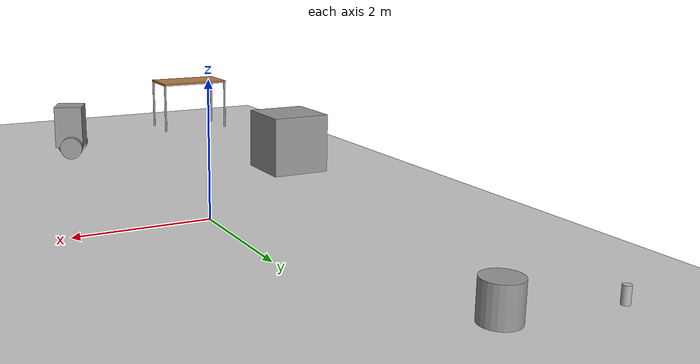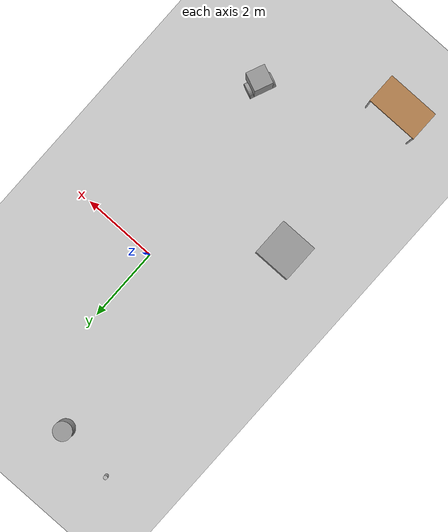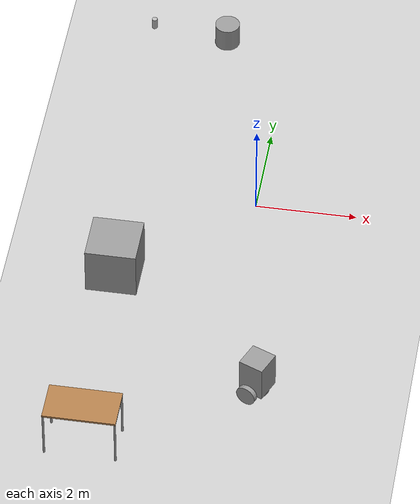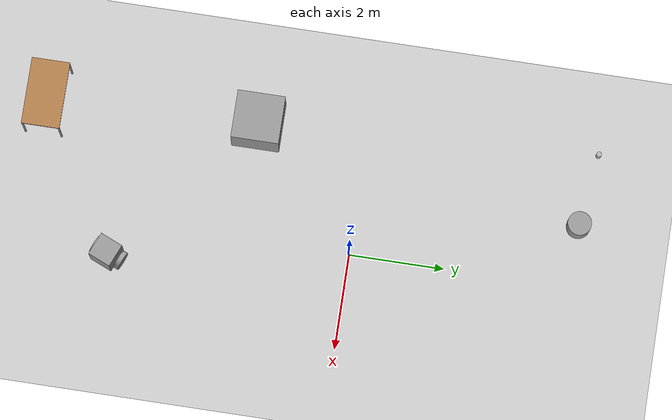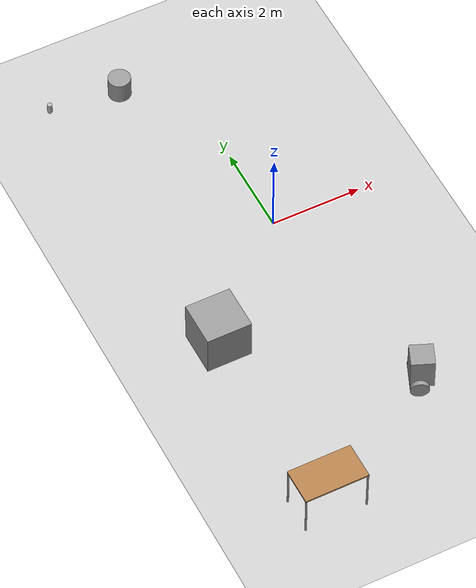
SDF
<sdf version="1.6">
 <world name="default">
  <model name="ground_plane">
   <static>1</static>
   <link name="link">
    <collision name="collision">
     <geometry><plane><normal>0 0 1</normal><size>100 100</size></plane></geometry>
     <surface><friction><ode><mu>100</mu><mu2>50</mu2></ode></friction></surface>
    </collision>
    <visual name="visual">
     <cast_shadows>0</cast_shadows>
     <geometry><plane><normal>0 0 1</normal><size>100 100</size></plane></geometry>
     <material>
      <script><uri>file://media/materials/scripts/gazebo.material</uri><name>Gazebo/Grey</name></script>
     </material>
    </visual>
   </link>
  </model>
  <model name="myrobot">
   <link name="link_0">
    <pose>0.0125 0 0.28125 0 -0 0</pose>
    <inertial>
     <mass>1</mass>
     <inertia>
      <ixx>0.166667</ixx>
      <ixy>0</ixy>
      <ixz>0</ixz>
      <iyy>0.166667</iyy>
      <iyz>0</iyz>
      <izz>0.166667</izz>
     </inertia>
    </inertial>
    <visual name="visual">
     <geometry><box><size>0.5 0.5 0.75</size></box></geometry>
     <material>
      <lighting>1</lighting>
      <script><uri>file://media/materials/scripts/gazebo.material</uri><name>Gazebo/Grey</name></script>
      <ambient>0.3 0.3 0.3 1</ambient>
      <diffuse>0.7 0.7 0.7 1</diffuse>
      <specular>0.01 0.01 0.01 1</specular>
      <emissive>0 0 0 1</emissive>
      <shader type="vertex"><normal_map>__default__</normal_map></shader>
     </material>
    </visual>
    <collision name="collision">
     <geometry><box><size>0.5 0.5 0.75</size></box></geometry>
     <surface>
      <friction>
       <ode><mu>1</mu><mu2>1</mu2><fdir1>0 0 0</fdir1><slip1>0</slip1><slip2>0</slip2></ode>
       <torsional>
        <coefficient>1</coefficient>
        <patch_radius>0</patch_radius>
        <surface_radius>0</surface_radius>
        <use_patch_radius>1</use_patch_radius>
        <ode><slip>0</slip></ode>
       </torsional>
      </friction>
      <bounce><restitution_coefficient>0</restitution_coefficient><threshold>1e+06</threshold></bounce>
      <contact>
       <collide_without_contact>0</collide_without_contact>
       <collide_without_contact_bitmask>1</collide_without_contact_bitmask>
       <collide_bitmask>1</collide_bitmask>
       <ode>
        <soft_cfm>0</soft_cfm>
        <soft_erp>0.2</soft_erp>
        <kp>1e+13</kp>
        <kd>1</kd>
        <max_vel>0.01</max_vel>
        <min_depth>0</min_depth>
       </ode>
       <bullet>
        <split_impulse>1</split_impulse>
        <split_impulse_penetration_threshold>-0.01</split_impulse_penetration_threshold>
        <soft_cfm>0</soft_cfm>
        <soft_erp>0.2</soft_erp>
        <kp>1e+13</kp>
        <kd>1</kd>
       </bullet>
      </contact>
     </surface>
    </collision>
   </link>
   <link name="link_1">
    <pose>-0.0375 0.300019 -0.09375 1.5707 -0 0</pose>
    <inertial>
     <mass>1</mass>
     <inertia><ixx>0.145833</ixx><ixy>0</ixy><ixz>0</ixz><iyy>0.145833</iyy><iyz>0</iyz><izz>0.125</izz></inertia>
    </inertial>
    <visual name="visual">
     <geometry><cylinder><radius>0.2</radius><length>0.1</length></cylinder></geometry>
     <material>
      <lighting>1</lighting>
      <script><uri>file://media/materials/scripts/gazebo.material</uri><name>Gazebo/Grey</name></script>
      <ambient>0.3 0.3 0.3 1</ambient>
      <diffuse>0.7 0.7 0.7 1</diffuse>
      <specular>0.01 0.01 0.01 1</specular>
      <emissive>0 0 0 1</emissive>
      <shader type="vertex"><normal_map>__default__</normal_map></shader>
     </material>
    </visual>
    <collision name="collision">
     <geometry><cylinder><radius>0.2</radius><length>0.1</length></cylinder></geometry>
     <surface>
      <friction>
       <ode><mu>1</mu><mu2>1</mu2><fdir1>0 0 0</fdir1><slip1>0</slip1><slip2>0</slip2></ode>
       <torsional>
        <coefficient>1</coefficient>
        <patch_radius>0</patch_radius>
        <surface_radius>0</surface_radius>
        <use_patch_radius>1</use_patch_radius>
        <ode><slip>0</slip></ode>
       </torsional>
      </friction>
      <bounce><restitution_coefficient>0</restitution_coefficient><threshold>1e+06</threshold></bounce>
      <contact>
       <collide_without_contact>0</collide_without_contact>
       <collide_without_contact_bitmask>1</collide_without_contact_bitmask>
       <collide_bitmask>1</collide_bitmask>
       <ode>
        <soft_cfm>0</soft_cfm>
        <soft_erp>0.2</soft_erp>
        <kp>1e+13</kp>
        <kd>1</kd>
        <max_vel>0.01</max_vel>
        <min_depth>0</min_depth>
       </ode>
       <bullet>
        <split_impulse>1</split_impulse>
        <split_impulse_penetration_threshold>-0.01</split_impulse_penetration_threshold>
        <soft_cfm>0</soft_cfm>
        <soft_erp>0.2</soft_erp>
        <kp>1e+13</kp>
        <kd>1</kd>
       </bullet>
      </contact>
     </surface>
    </collision>
   </link>
   <link name="link_1_clone">
    <pose>-0.0375 -0.300019 -0.09375 1.5707 -0 0</pose>
    <inertial>
     <mass>1</mass>
     <inertia><ixx>0.145833</ixx><ixy>0</ixy><ixz>0</ixz><iyy>0.145833</iyy><iyz>0</iyz><izz>0.125</izz></inertia>
    </inertial>
    <visual name="visual">
     <geometry><cylinder><radius>0.2</radius><length>0.1</length></cylinder></geometry>
     <material>
      <lighting>1</lighting>
      <script><uri>file://media/materials/scripts/gazebo.material</uri><name>Gazebo/Grey</name></script>
      <ambient>0.3 0.3 0.3 1</ambient>
      <diffuse>0.7 0.7 0.7 1</diffuse>
      <specular>0.01 0.01 0.01 1</specular>
      <emissive>0 0 0 1</emissive>
      <shader type="vertex"><normal_map>__default__</normal_map></shader>
     </material>
    </visual>
    <collision name="collision">
     <geometry><cylinder><radius>0.2</radius><length>0.1</length></cylinder></geometry>
     <surface>
      <friction>
       <ode><mu>1</mu><mu2>1</mu2><fdir1>0 0 0</fdir1><slip1>0</slip1><slip2>0</slip2></ode>
       <torsional>
        <coefficient>1</coefficient>
        <patch_radius>0</patch_radius>
        <surface_radius>0</surface_radius>
        <use_patch_radius>1</use_patch_radius>
        <ode><slip>0</slip></ode>
       </torsional>
      </friction>
      <bounce><restitution_coefficient>0</restitution_coefficient><threshold>1e+06</threshold></bounce>
      <contact>
       <collide_without_contact>0</collide_without_contact>
       <collide_without_contact_bitmask>1</collide_without_contact_bitmask>
       <collide_bitmask>1</collide_bitmask>
       <ode>
        <soft_cfm>0</soft_cfm>
        <soft_erp>0.2</soft_erp>
        <kp>1e+13</kp>
        <kd>1</kd>
        <max_vel>0.01</max_vel>
        <min_depth>0</min_depth>
       </ode>
       <bullet>
        <split_impulse>1</split_impulse>
        <split_impulse_penetration_threshold>-0.01</split_impulse_penetration_threshold>
        <soft_cfm>0</soft_cfm>
        <soft_erp>0.2</soft_erp>
        <kp>1e+13</kp>
        <kd>1</kd>
       </bullet>
      </contact>
     </surface>
    </collision>
   </link>
   <link name="link_2">
    <pose>0.0625 0 -0.09375 0 -0 0</pose>
    <inertial>
     <mass>1</mass>
     <inertia><ixx>0.1</ixx><ixy>0</ixy><ixz>0</ixz><iyy>0.1</iyy><iyz>0</iyz><izz>0.1</izz></inertia>
    </inertial>
    <visual name="visual">
     <geometry><sphere><radius>0.2</radius></sphere></geometry>
     <material>
      <lighting>1</lighting>
      <script><uri>file://media/materials/scripts/gazebo.material</uri><name>Gazebo/Grey</name></script>
      <ambient>0.3 0.3 0.3 1</ambient>
      <diffuse>0.7 0.7 0.7 1</diffuse>
      <specular>0.01 0.01 0.01 1</specular>
      <emissive>0 0 0 1</emissive>
      <shader type="vertex"><normal_map>__default__</normal_map></shader>
     </material>
    </visual>
    <collision name="collision">
     <geometry><sphere><radius>0.2</radius></sphere></geometry>
     <surface>
      <friction>
       <ode><mu>1</mu><mu2>1</mu2><fdir1>0 0 0</fdir1><slip1>0</slip1><slip2>0</slip2></ode>
       <torsional>
        <coefficient>1</coefficient>
        <patch_radius>0</patch_radius>
        <surface_radius>0</surface_radius>
        <use_patch_radius>1</use_patch_radius>
        <ode><slip>0</slip></ode>
       </torsional>
      </friction>
      <bounce><restitution_coefficient>0</restitution_coefficient><threshold>1e+06</threshold></bounce>
      <contact>
       <collide_without_contact>0</collide_without_contact>
       <collide_without_contact_bitmask>1</collide_without_contact_bitmask>
       <collide_bitmask>1</collide_bitmask>
       <ode>
        <soft_cfm>0</soft_cfm>
        <soft_erp>0.2</soft_erp>
        <kp>1e+13</kp>
        <kd>1</kd>
        <max_vel>0.01</max_vel>
        <min_depth>0</min_depth>
       </ode>
       <bullet>
        <split_impulse>1</split_impulse>
        <split_impulse_penetration_threshold>-0.01</split_impulse_penetration_threshold>
        <soft_cfm>0</soft_cfm>
        <soft_erp>0.2</soft_erp>
        <kp>1e+13</kp>
        <kd>1</kd>
       </bullet>
      </contact>
     </surface>
    </collision>
   </link>
   <joint name="link_0_JOINT_1" type="revolute">
    <parent>link_0</parent>
    <child>link_1</child>
    <axis>
     <xyz>0 0 1</xyz>
     <use_parent_model_frame>0</use_parent_model_frame>
     <limit>
      <lower>-1.79769e+308</lower>
      <upper>1.79769e+308</upper>
      <effort>-1</effort>
      <velocity>-1</velocity>
     </limit>
     <dynamics>
      <spring_reference>0</spring_reference>
      <spring_stiffness>0</spring_stiffness>
      <damping>0</damping>
     </dynamics>
    </axis>
    <physics>
     <ode><limit><cfm>0</cfm><erp>0.2</erp></limit><suspension><cfm>0</cfm><erp>0.2</erp></suspension></ode>
    </physics>
   </joint>
   <joint name="link_0_JOINT_2" type="revolute">
    <parent>link_0</parent>
    <child>link_1_clone</child>
    <axis>
     <xyz>1 0 0</xyz>
     <use_parent_model_frame>0</use_parent_model_frame>
     <limit>
      <lower>-1.79769e+308</lower>
      <upper>1.79769e+308</upper>
      <effort>-1</effort>
      <velocity>-1</velocity>
     </limit>
     <dynamics>
      <spring_reference>0</spring_reference>
      <spring_stiffness>0</spring_stiffness>
      <damping>0</damping>
     </dynamics>
    </axis>
    <physics>
     <ode><limit><cfm>0</cfm><erp>0.2</erp></limit><suspension><cfm>0</cfm><erp>0.2</erp></suspension></ode>
    </physics>
   </joint>
   <joint name="link_0_JOINT_3" type="ball">
    <parent>link_0</parent>
    <child>link_2</child>
    <physics>
     <ode><limit><cfm>0</cfm><erp>0.2</erp></limit><suspension><cfm>0</cfm><erp>0.2</erp></suspension></ode>
    </physics>
   </joint>
   <static>0</static>
   <pose>0.769948 -4.95297 0.293751 7e-06 3.1e-05 -0.401224</pose>
  </model>
  <model name="unit_cylinder_0_0">
   <link name="link">
    <inertial>
     <mass>1</mass>
     <inertia><ixx>0.145833</ixx><ixy>0</ixy><ixz>0</ixz><iyy>0.145833</iyy><iyz>0</iyz><izz>0.125</izz></inertia>
    </inertial>
    <visual name="visual">
     <geometry><cylinder><radius>0.25</radius><length>0.5</length></cylinder></geometry>
     <material>
      <script><name>Gazebo/Grey</name><uri>file://media/materials/scripts/gazebo.material</uri></script>
      <ambient>0.3 0.3 0.3 1</ambient>
      <diffuse>0.7 0.7 0.7 1</diffuse>
      <specular>0.01 0.01 0.01 1</specular>
      <emissive>0 0 0 1</emissive>
      <shader type="vertex"><normal_map>__default__</normal_map></shader>
     </material>
    </visual>
    <collision name="collision">
     <geometry><cylinder><radius>0.25</radius><length>0.5</length></cylinder></geometry>
     <surface>
      <friction>
       <ode><mu>1</mu><mu2>1</mu2><fdir1>0 0 0</fdir1><slip1>0</slip1><slip2>0</slip2></ode>
       <torsional>
        <coefficient>1</coefficient>
        <patch_radius>0</patch_radius>
        <surface_radius>0</surface_radius>
        <use_patch_radius>1</use_patch_radius>
        <ode><slip>0</slip></ode>
       </torsional>
      </friction>
      <bounce><restitution_coefficient>0</restitution_coefficient><threshold>1e+06</threshold></bounce>
      <contact>
       <collide_without_contact>0</collide_without_contact>
       <collide_without_contact_bitmask>1</collide_without_contact_bitmask>
       <collide_bitmask>1</collide_bitmask>
       <ode>
        <soft_cfm>0</soft_cfm>
        <soft_erp>0.2</soft_erp>
        <kp>1e+13</kp>
        <kd>1</kd>
        <max_vel>0.01</max_vel>
        <min_depth>0</min_depth>
       </ode>
       <bullet>
        <split_impulse>1</split_impulse>
        <split_impulse_penetration_threshold>-0.01</split_impulse_penetration_threshold>
        <soft_cfm>0</soft_cfm>
        <soft_erp>0.2</soft_erp>
        <kp>1e+13</kp>
        <kd>1</kd>
       </bullet>
      </contact>
     </surface>
    </collision>
   </link>
   <static>0</static>
   <pose>-1.30437 4.62965 0.249991 0 -0 0</pose>
  </model>
  <model name="beer">
   <link name="link">
    <pose>0 0 0.115 0 -0 0</pose>
    <inertial>
     <mass>0.39</mass>
     <inertia><ixx>0.00058</ixx><ixy>0</ixy><ixz>0</ixz><iyy>0.00058</iyy><iyz>0</iyz><izz>0.00019</izz></inertia>
    </inertial>
    <collision name="collision">
     <geometry><cylinder><radius>0.055</radius><length>0.23</length></cylinder></geometry>
    </collision>
    <visual name="visual">
     <geometry><cylinder><radius>0.055</radius><length>0.23</length></cylinder></geometry>
     <material>
      <script>
       <uri>model://beer/materials/scripts</uri>
       <uri>model://beer/materials/textures</uri>
       <name>Beer/Diffuse</name>
      </script>
     </material>
    </visual>
   </link>
   <pose>-2.85151 4.84104 -7e-06 0 0 -3.3e-05</pose>
  </model>
  <model name="table">
   <static>0</static>
   <link name="link">
    <collision name="surface">
     <pose>0 0 1 0 -0 0</pose>
     <geometry><box><size>1.5 0.8 0.03</size></box></geometry>
     <surface><friction><ode><mu>0.6</mu><mu2>0.6</mu2></ode></friction></surface>
    </collision>
    <visual name="visual1">
     <pose>0 0 1 0 -0 0</pose>
     <geometry><box><size>1.4 0.8 0.04</size></box></geometry>
     <material>
      <script><uri>file://media/materials/scripts/gazebo.material</uri><name>Gazebo/Wood</name></script>
     </material>
    </visual>
    <collision name="front_left_leg">
     <pose>0.68 0.38 0.5 0 -0 0</pose>
     <geometry><cylinder><radius>0.02</radius><length>1</length></cylinder></geometry>
    </collision>
    <visual name="front_left_leg">
     <pose>0.68 0.38 0.5 0 -0 0</pose>
     <geometry><cylinder><radius>0.02</radius><length>1</length></cylinder></geometry>
     <material>
      <script><uri>file://media/materials/scripts/gazebo.material</uri><name>Gazebo/Grey</name></script>
     </material>
    </visual>
    <collision name="front_right_leg">
     <pose>0.68 -0.38 0.5 0 -0 0</pose>
     <geometry><cylinder><radius>0.02</radius><length>1</length></cylinder></geometry>
    </collision>
    <visual name="front_right_leg">
     <pose>0.68 -0.38 0.5 0 -0 0</pose>
     <geometry><cylinder><radius>0.02</radius><length>1</length></cylinder></geometry>
     <material>
      <script><uri>file://media/materials/scripts/gazebo.material</uri><name>Gazebo/Grey</name></script>
     </material>
    </visual>
    <collision name="back_right_leg">
     <pose>-0.68 -0.38 0.5 0 -0 0</pose>
     <geometry><cylinder><radius>0.02</radius><length>1</length></cylinder></geometry>
    </collision>
    <visual name="back_right_leg">
     <pose>-0.68 -0.38 0.5 0 -0 0</pose>
     <geometry><cylinder><radius>0.02</radius><length>1</length></cylinder></geometry>
     <material>
      <script><uri>file://media/materials/scripts/gazebo.material</uri><name>Gazebo/Grey</name></script>
     </material>
    </visual>
    <collision name="back_left_leg">
     <pose>-0.68 0.38 0.5 0 -0 0</pose>
     <geometry><cylinder><radius>0.02</radius><length>1</length></cylinder></geometry>
    </collision>
    <visual name="back_left_leg">
     <pose>-0.68 0.38 0.5 0 -0 0</pose>
     <geometry><cylinder><radius>0.02</radius><length>1</length></cylinder></geometry>
     <material>
      <script><uri>file://media/materials/scripts/gazebo.material</uri><name>Gazebo/Grey</name></script>
     </material>
    </visual>
    <inertial>
     <inertia><ixx>1</ixx><ixy>0</ixy><ixz>0</ixz><iyy>1</iyy><iyz>0</iyz><izz>1</izz></inertia>
     <mass>1</mass>
    </inertial>
   </link>
   <pose>-2.25774 -6.69519 -1e-06 0 1e-06 0</pose>
  </model>
  <model name="unit_box_0_0">
   <pose>-2.42707 -2.27499 0.5 1e-06 -0 -3e-06</pose>
   <link name="link">
    <inertial>
     <mass>1</mass>
     <inertia>
      <ixx>0.166667</ixx>
      <ixy>0</ixy>
      <ixz>0</ixz>
      <iyy>0.166667</iyy>
      <iyz>0</iyz>
      <izz>0.166667</izz>
     </inertia>
    </inertial>
    <collision name="collision"><geometry><box><size>1 1 1</size></box></geometry></collision>
    <visual name="visual">
     <geometry><box><size>1 1 1</size></box></geometry>
     <material>
      <script><name>Gazebo/Grey</name><uri>file://media/materials/scripts/gazebo.material</uri></script>
     </material>
    </visual>
   </link>
  </model>
 </world>
</sdf>
